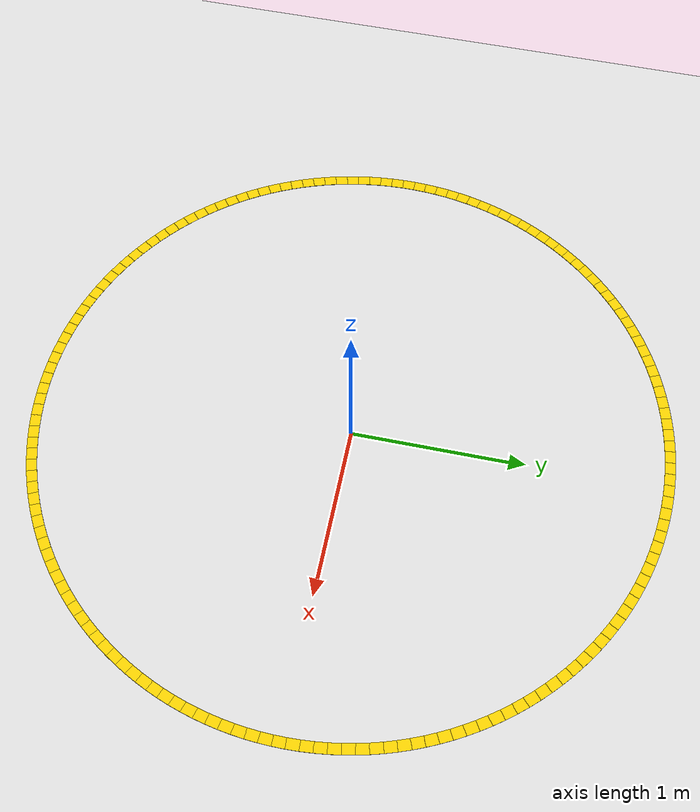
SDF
<?xml version='1.0' encoding='utf-8'?>
<sdf version="1.6">
  <world name="lab4_prep_ring">
    <gravity>0 0 -9.81</gravity>
    <physics name="default_physics" type="ode">
      <real_time_update_rate>1000</real_time_update_rate>
      <max_step_size>0.001</max_step_size>
    </physics>
    <scene>
      <ambient>0.65 0.65 0.65 1</ambient>
      <background>0.8 0.85 0.9 1</background>
    </scene>
    <light name="prep_sun" type="directional">
      <pose>0 0 10 0 0 0</pose>
      <diffuse>0.8 0.8 0.8 1</diffuse>
      <specular>0.1 0.1 0.1 1</specular>
      <direction>-0.5 -0.2 -1</direction>
    </light>
    <model name="prep_floor">
      <static>true</static>
      <link name="floor">
        <collision name="collision">
          <geometry>
            <plane>
              <normal>0 0 1</normal>
              <size>10 10</size>
            </plane>
          </geometry>
        </collision>
        <visual name="visual">
          <geometry>
            <plane>
              <normal>0 0 1</normal>
              <size>10 10</size>
            </plane>
          </geometry>
          <material>
            <ambient>0.9 0.9 0.9 1</ambient>
            <diffuse>0.9 0.9 0.9 1</diffuse>
          </material>
        </visual>
      </link>
    </model>
    <model name="prep_yellow_ring">
      <static>true</static>
      <link name="line">
        <visual name="yellow_0">
          <pose>1.80000000 0.00000000 0.002 0 0 1.57079633</pose>
          <geometry>
            <box>
              <size>0.072 0.06 0.002</size>
            </box>
          </geometry>
          <material>
            <ambient>1 0.85 0 1</ambient>
            <diffuse>1 0.85 0 1</diffuse>
          </material>
        </visual>
        <visual name="yellow_1">
          <pose>1.79861227 0.07066767 0.002 0 0 1.61006623</pose>
          <geometry>
            <box>
              <size>0.072 0.06 0.002</size>
            </box>
          </geometry>
          <material>
            <ambient>1 0.85 0 1</ambient>
            <diffuse>1 0.85 0 1</diffuse>
          </material>
        </visual>
        <visual name="yellow_2">
          <pose>1.79445120 0.14122637 0.002 0 0 1.64933614</pose>
          <geometry>
            <box>
              <size>0.072 0.06 0.002</size>
            </box>
          </geometry>
          <material>
            <ambient>1 0.85 0 1</ambient>
            <diffuse>1 0.85 0 1</diffuse>
          </material>
        </visual>
        <visual name="yellow_3">
          <pose>1.78752322 0.21156732 0.002 0 0 1.68860605</pose>
          <geometry>
            <box>
              <size>0.072 0.06 0.002</size>
            </box>
          </geometry>
          <material>
            <ambient>1 0.85 0 1</ambient>
            <diffuse>1 0.85 0 1</diffuse>
          </material>
        </visual>
        <visual name="yellow_4">
          <pose>1.77783901 0.28158204 0.002 0 0 1.72787596</pose>
          <geometry>
            <box>
              <size>0.072 0.06 0.002</size>
            </box>
          </geometry>
          <material>
            <ambient>1 0.85 0 1</ambient>
            <diffuse>1 0.85 0 1</diffuse>
          </material>
        </visual>
        <visual name="yellow_5">
          <pose>1.76541350 0.35116258 0.002 0 0 1.76714587</pose>
          <geometry>
            <box>
              <size>0.072 0.06 0.002</size>
            </box>
          </geometry>
          <material>
            <ambient>1 0.85 0 1</ambient>
            <diffuse>1 0.85 0 1</diffuse>
          </material>
        </visual>
        <visual name="yellow_6">
          <pose>1.75026586 0.42020165 0.002 0 0 1.80641578</pose>
          <geometry>
            <box>
              <size>0.072 0.06 0.002</size>
            </box>
          </geometry>
          <material>
            <ambient>1 0.85 0 1</ambient>
            <diffuse>1 0.85 0 1</diffuse>
          </material>
        </visual>
        <visual name="yellow_7">
          <pose>1.73241943 0.48859281 0.002 0 0 1.84568568</pose>
          <geometry>
            <box>
              <size>0.072 0.06 0.002</size>
            </box>
          </geometry>
          <material>
            <ambient>1 0.85 0 1</ambient>
            <diffuse>1 0.85 0 1</diffuse>
          </material>
        </visual>
        <visual name="yellow_8">
          <pose>1.71190173 0.55623059 0.002 0 0 1.88495559</pose>
          <geometry>
            <box>
              <size>0.072 0.06 0.002</size>
            </box>
          </geometry>
          <material>
            <ambient>1 0.85 0 1</ambient>
            <diffuse>1 0.85 0 1</diffuse>
          </material>
        </visual>
        <visual name="yellow_9">
          <pose>1.68874440 0.62301070 0.002 0 0 1.92422550</pose>
          <geometry>
            <box>
              <size>0.072 0.06 0.002</size>
            </box>
          </geometry>
          <material>
            <ambient>1 0.85 0 1</ambient>
            <diffuse>1 0.85 0 1</diffuse>
          </material>
        </visual>
        <visual name="yellow_10">
          <pose>1.66298316 0.68883018 0.002 0 0 1.96349541</pose>
          <geometry>
            <box>
              <size>0.072 0.06 0.002</size>
            </box>
          </geometry>
          <material>
            <ambient>1 0.85 0 1</ambient>
            <diffuse>1 0.85 0 1</diffuse>
          </material>
        </visual>
        <visual name="yellow_11">
          <pose>1.63465771 0.75358753 0.002 0 0 2.00276532</pose>
          <geometry>
            <box>
              <size>0.072 0.06 0.002</size>
            </box>
          </geometry>
          <material>
            <ambient>1 0.85 0 1</ambient>
            <diffuse>1 0.85 0 1</diffuse>
          </material>
        </visual>
        <visual name="yellow_12">
          <pose>1.60381174 0.81718290 0.002 0 0 2.04203522</pose>
          <geometry>
            <box>
              <size>0.072 0.06 0.002</size>
            </box>
          </geometry>
          <material>
            <ambient>1 0.85 0 1</ambient>
            <diffuse>1 0.85 0 1</diffuse>
          </material>
        </visual>
        <visual name="yellow_13">
          <pose>1.57049281 0.87951823 0.002 0 0 2.08130513</pose>
          <geometry>
            <box>
              <size>0.072 0.06 0.002</size>
            </box>
          </geometry>
          <material>
            <ambient>1 0.85 0 1</ambient>
            <diffuse>1 0.85 0 1</diffuse>
          </material>
        </visual>
        <visual name="yellow_14">
          <pose>1.53475230 0.94049742 0.002 0 0 2.12057504</pose>
          <geometry>
            <box>
              <size>0.072 0.06 0.002</size>
            </box>
          </geometry>
          <material>
            <ambient>1 0.85 0 1</ambient>
            <diffuse>1 0.85 0 1</diffuse>
          </material>
        </visual>
        <visual name="yellow_15">
          <pose>1.49664530 1.00002642 0.002 0 0 2.15984495</pose>
          <geometry>
            <box>
              <size>0.072 0.06 0.002</size>
            </box>
          </geometry>
          <material>
            <ambient>1 0.85 0 1</ambient>
            <diffuse>1 0.85 0 1</diffuse>
          </material>
        </visual>
        <visual name="yellow_16">
          <pose>1.45623059 1.05801345 0.002 0 0 2.19911486</pose>
          <geometry>
            <box>
              <size>0.072 0.06 0.002</size>
            </box>
          </geometry>
          <material>
            <ambient>1 0.85 0 1</ambient>
            <diffuse>1 0.85 0 1</diffuse>
          </material>
        </visual>
        <visual name="yellow_17">
          <pose>1.41357048 1.11436911 0.002 0 0 2.23838477</pose>
          <geometry>
            <box>
              <size>0.072 0.06 0.002</size>
            </box>
          </geometry>
          <material>
            <ambient>1 0.85 0 1</ambient>
            <diffuse>1 0.85 0 1</diffuse>
          </material>
        </visual>
        <visual name="yellow_18">
          <pose>1.36873074 1.16900649 0.002 0 0 2.27765467</pose>
          <geometry>
            <box>
              <size>0.072 0.06 0.002</size>
            </box>
          </geometry>
          <material>
            <ambient>1 0.85 0 1</ambient>
            <diffuse>1 0.85 0 1</diffuse>
          </material>
        </visual>
        <visual name="yellow_19">
          <pose>1.32178052 1.22184134 0.002 0 0 2.31692458</pose>
          <geometry>
            <box>
              <size>0.072 0.06 0.002</size>
            </box>
          </geometry>
          <material>
            <ambient>1 0.85 0 1</ambient>
            <diffuse>1 0.85 0 1</diffuse>
          </material>
        </visual>
        <visual name="yellow_20">
          <pose>1.27279221 1.27279221 0.002 0 0 2.35619449</pose>
          <geometry>
            <box>
              <size>0.072 0.06 0.002</size>
            </box>
          </geometry>
          <material>
            <ambient>1 0.85 0 1</ambient>
            <diffuse>1 0.85 0 1</diffuse>
          </material>
        </visual>
        <visual name="yellow_21">
          <pose>1.22184134 1.32178052 0.002 0 0 2.39546440</pose>
          <geometry>
            <box>
              <size>0.072 0.06 0.002</size>
            </box>
          </geometry>
          <material>
            <ambient>1 0.85 0 1</ambient>
            <diffuse>1 0.85 0 1</diffuse>
          </material>
        </visual>
        <visual name="yellow_22">
          <pose>1.16900649 1.36873074 0.002 0 0 2.43473431</pose>
          <geometry>
            <box>
              <size>0.072 0.06 0.002</size>
            </box>
          </geometry>
          <material>
            <ambient>1 0.85 0 1</ambient>
            <diffuse>1 0.85 0 1</diffuse>
          </material>
        </visual>
        <visual name="yellow_23">
          <pose>1.11436911 1.41357048 0.002 0 0 2.47400421</pose>
          <geometry>
            <box>
              <size>0.072 0.06 0.002</size>
            </box>
          </geometry>
          <material>
            <ambient>1 0.85 0 1</ambient>
            <diffuse>1 0.85 0 1</diffuse>
          </material>
        </visual>
        <visual name="yellow_24">
          <pose>1.05801345 1.45623059 0.002 0 0 2.51327412</pose>
          <geometry>
            <box>
              <size>0.072 0.06 0.002</size>
            </box>
          </geometry>
          <material>
            <ambient>1 0.85 0 1</ambient>
            <diffuse>1 0.85 0 1</diffuse>
          </material>
        </visual>
        <visual name="yellow_25">
          <pose>1.00002642 1.49664530 0.002 0 0 2.55254403</pose>
          <geometry>
            <box>
              <size>0.072 0.06 0.002</size>
            </box>
          </geometry>
          <material>
            <ambient>1 0.85 0 1</ambient>
            <diffuse>1 0.85 0 1</diffuse>
          </material>
        </visual>
        <visual name="yellow_26">
          <pose>0.94049742 1.53475230 0.002 0 0 2.59181394</pose>
          <geometry>
            <box>
              <size>0.072 0.06 0.002</size>
            </box>
          </geometry>
          <material>
            <ambient>1 0.85 0 1</ambient>
            <diffuse>1 0.85 0 1</diffuse>
          </material>
        </visual>
        <visual name="yellow_27">
          <pose>0.87951823 1.57049281 0.002 0 0 2.63108385</pose>
          <geometry>
            <box>
              <size>0.072 0.06 0.002</size>
            </box>
          </geometry>
          <material>
            <ambient>1 0.85 0 1</ambient>
            <diffuse>1 0.85 0 1</diffuse>
          </material>
        </visual>
        <visual name="yellow_28">
          <pose>0.81718290 1.60381174 0.002 0 0 2.67035376</pose>
          <geometry>
            <box>
              <size>0.072 0.06 0.002</size>
            </box>
          </geometry>
          <material>
            <ambient>1 0.85 0 1</ambient>
            <diffuse>1 0.85 0 1</diffuse>
          </material>
        </visual>
        <visual name="yellow_29">
          <pose>0.75358753 1.63465771 0.002 0 0 2.70962366</pose>
          <geometry>
            <box>
              <size>0.072 0.06 0.002</size>
            </box>
          </geometry>
          <material>
            <ambient>1 0.85 0 1</ambient>
            <diffuse>1 0.85 0 1</diffuse>
          </material>
        </visual>
        <visual name="yellow_30">
          <pose>0.68883018 1.66298316 0.002 0 0 2.74889357</pose>
          <geometry>
            <box>
              <size>0.072 0.06 0.002</size>
            </box>
          </geometry>
          <material>
            <ambient>1 0.85 0 1</ambient>
            <diffuse>1 0.85 0 1</diffuse>
          </material>
        </visual>
        <visual name="yellow_31">
          <pose>0.62301070 1.68874440 0.002 0 0 2.78816348</pose>
          <geometry>
            <box>
              <size>0.072 0.06 0.002</size>
            </box>
          </geometry>
          <material>
            <ambient>1 0.85 0 1</ambient>
            <diffuse>1 0.85 0 1</diffuse>
          </material>
        </visual>
        <visual name="yellow_32">
          <pose>0.55623059 1.71190173 0.002 0 0 2.82743339</pose>
          <geometry>
            <box>
              <size>0.072 0.06 0.002</size>
            </box>
          </geometry>
          <material>
            <ambient>1 0.85 0 1</ambient>
            <diffuse>1 0.85 0 1</diffuse>
          </material>
        </visual>
        <visual name="yellow_33">
          <pose>0.48859281 1.73241943 0.002 0 0 2.86670330</pose>
          <geometry>
            <box>
              <size>0.072 0.06 0.002</size>
            </box>
          </geometry>
          <material>
            <ambient>1 0.85 0 1</ambient>
            <diffuse>1 0.85 0 1</diffuse>
          </material>
        </visual>
        <visual name="yellow_34">
          <pose>0.42020165 1.75026586 0.002 0 0 2.90597320</pose>
          <geometry>
            <box>
              <size>0.072 0.06 0.002</size>
            </box>
          </geometry>
          <material>
            <ambient>1 0.85 0 1</ambient>
            <diffuse>1 0.85 0 1</diffuse>
          </material>
        </visual>
        <visual name="yellow_35">
          <pose>0.35116258 1.76541350 0.002 0 0 2.94524311</pose>
          <geometry>
            <box>
              <size>0.072 0.06 0.002</size>
            </box>
          </geometry>
          <material>
            <ambient>1 0.85 0 1</ambient>
            <diffuse>1 0.85 0 1</diffuse>
          </material>
        </visual>
        <visual name="yellow_36">
          <pose>0.28158204 1.77783901 0.002 0 0 2.98451302</pose>
          <geometry>
            <box>
              <size>0.072 0.06 0.002</size>
            </box>
          </geometry>
          <material>
            <ambient>1 0.85 0 1</ambient>
            <diffuse>1 0.85 0 1</diffuse>
          </material>
        </visual>
        <visual name="yellow_37">
          <pose>0.21156732 1.78752322 0.002 0 0 3.02378293</pose>
          <geometry>
            <box>
              <size>0.072 0.06 0.002</size>
            </box>
          </geometry>
          <material>
            <ambient>1 0.85 0 1</ambient>
            <diffuse>1 0.85 0 1</diffuse>
          </material>
        </visual>
        <visual name="yellow_38">
          <pose>0.14122637 1.79445120 0.002 0 0 3.06305284</pose>
          <geometry>
            <box>
              <size>0.072 0.06 0.002</size>
            </box>
          </geometry>
          <material>
            <ambient>1 0.85 0 1</ambient>
            <diffuse>1 0.85 0 1</diffuse>
          </material>
        </visual>
        <visual name="yellow_39">
          <pose>0.07066767 1.79861227 0.002 0 0 3.10232275</pose>
          <geometry>
            <box>
              <size>0.072 0.06 0.002</size>
            </box>
          </geometry>
          <material>
            <ambient>1 0.85 0 1</ambient>
            <diffuse>1 0.85 0 1</diffuse>
          </material>
        </visual>
        <visual name="yellow_40">
          <pose>0.00000000 1.80000000 0.002 0 0 3.14159265</pose>
          <geometry>
            <box>
              <size>0.072 0.06 0.002</size>
            </box>
          </geometry>
          <material>
            <ambient>1 0.85 0 1</ambient>
            <diffuse>1 0.85 0 1</diffuse>
          </material>
        </visual>
        <visual name="yellow_41">
          <pose>-0.07066767 1.79861227 0.002 0 0 3.18086256</pose>
          <geometry>
            <box>
              <size>0.072 0.06 0.002</size>
            </box>
          </geometry>
          <material>
            <ambient>1 0.85 0 1</ambient>
            <diffuse>1 0.85 0 1</diffuse>
          </material>
        </visual>
        <visual name="yellow_42">
          <pose>-0.14122637 1.79445120 0.002 0 0 3.22013247</pose>
          <geometry>
            <box>
              <size>0.072 0.06 0.002</size>
            </box>
          </geometry>
          <material>
            <ambient>1 0.85 0 1</ambient>
            <diffuse>1 0.85 0 1</diffuse>
          </material>
        </visual>
        <visual name="yellow_43">
          <pose>-0.21156732 1.78752322 0.002 0 0 3.25940238</pose>
          <geometry>
            <box>
              <size>0.072 0.06 0.002</size>
            </box>
          </geometry>
          <material>
            <ambient>1 0.85 0 1</ambient>
            <diffuse>1 0.85 0 1</diffuse>
          </material>
        </visual>
        <visual name="yellow_44">
          <pose>-0.28158204 1.77783901 0.002 0 0 3.29867229</pose>
          <geometry>
            <box>
              <size>0.072 0.06 0.002</size>
            </box>
          </geometry>
          <material>
            <ambient>1 0.85 0 1</ambient>
            <diffuse>1 0.85 0 1</diffuse>
          </material>
        </visual>
        <visual name="yellow_45">
          <pose>-0.35116258 1.76541350 0.002 0 0 3.33794219</pose>
          <geometry>
            <box>
              <size>0.072 0.06 0.002</size>
            </box>
          </geometry>
          <material>
            <ambient>1 0.85 0 1</ambient>
            <diffuse>1 0.85 0 1</diffuse>
          </material>
        </visual>
        <visual name="yellow_46">
          <pose>-0.42020165 1.75026586 0.002 0 0 3.37721210</pose>
          <geometry>
            <box>
              <size>0.072 0.06 0.002</size>
            </box>
          </geometry>
          <material>
            <ambient>1 0.85 0 1</ambient>
            <diffuse>1 0.85 0 1</diffuse>
          </material>
        </visual>
        <visual name="yellow_47">
          <pose>-0.48859281 1.73241943 0.002 0 0 3.41648201</pose>
          <geometry>
            <box>
              <size>0.072 0.06 0.002</size>
            </box>
          </geometry>
          <material>
            <ambient>1 0.85 0 1</ambient>
            <diffuse>1 0.85 0 1</diffuse>
          </material>
        </visual>
        <visual name="yellow_48">
          <pose>-0.55623059 1.71190173 0.002 0 0 3.45575192</pose>
          <geometry>
            <box>
              <size>0.072 0.06 0.002</size>
            </box>
          </geometry>
          <material>
            <ambient>1 0.85 0 1</ambient>
            <diffuse>1 0.85 0 1</diffuse>
          </material>
        </visual>
        <visual name="yellow_49">
          <pose>-0.62301070 1.68874440 0.002 0 0 3.49502183</pose>
          <geometry>
            <box>
              <size>0.072 0.06 0.002</size>
            </box>
          </geometry>
          <material>
            <ambient>1 0.85 0 1</ambient>
            <diffuse>1 0.85 0 1</diffuse>
          </material>
        </visual>
        <visual name="yellow_50">
          <pose>-0.68883018 1.66298316 0.002 0 0 3.53429174</pose>
          <geometry>
            <box>
              <size>0.072 0.06 0.002</size>
            </box>
          </geometry>
          <material>
            <ambient>1 0.85 0 1</ambient>
            <diffuse>1 0.85 0 1</diffuse>
          </material>
        </visual>
        <visual name="yellow_51">
          <pose>-0.75358753 1.63465771 0.002 0 0 3.57356164</pose>
          <geometry>
            <box>
              <size>0.072 0.06 0.002</size>
            </box>
          </geometry>
          <material>
            <ambient>1 0.85 0 1</ambient>
            <diffuse>1 0.85 0 1</diffuse>
          </material>
        </visual>
        <visual name="yellow_52">
          <pose>-0.81718290 1.60381174 0.002 0 0 3.61283155</pose>
          <geometry>
            <box>
              <size>0.072 0.06 0.002</size>
            </box>
          </geometry>
          <material>
            <ambient>1 0.85 0 1</ambient>
            <diffuse>1 0.85 0 1</diffuse>
          </material>
        </visual>
        <visual name="yellow_53">
          <pose>-0.87951823 1.57049281 0.002 0 0 3.65210146</pose>
          <geometry>
            <box>
              <size>0.072 0.06 0.002</size>
            </box>
          </geometry>
          <material>
            <ambient>1 0.85 0 1</ambient>
            <diffuse>1 0.85 0 1</diffuse>
          </material>
        </visual>
        <visual name="yellow_54">
          <pose>-0.94049742 1.53475230 0.002 0 0 3.69137137</pose>
          <geometry>
            <box>
              <size>0.072 0.06 0.002</size>
            </box>
          </geometry>
          <material>
            <ambient>1 0.85 0 1</ambient>
            <diffuse>1 0.85 0 1</diffuse>
          </material>
        </visual>
        <visual name="yellow_55">
          <pose>-1.00002642 1.49664530 0.002 0 0 3.73064128</pose>
          <geometry>
            <box>
              <size>0.072 0.06 0.002</size>
            </box>
          </geometry>
          <material>
            <ambient>1 0.85 0 1</ambient>
            <diffuse>1 0.85 0 1</diffuse>
          </material>
        </visual>
        <visual name="yellow_56">
          <pose>-1.05801345 1.45623059 0.002 0 0 3.76991118</pose>
          <geometry>
            <box>
              <size>0.072 0.06 0.002</size>
            </box>
          </geometry>
          <material>
            <ambient>1 0.85 0 1</ambient>
            <diffuse>1 0.85 0 1</diffuse>
          </material>
        </visual>
        <visual name="yellow_57">
          <pose>-1.11436911 1.41357048 0.002 0 0 3.80918109</pose>
          <geometry>
            <box>
              <size>0.072 0.06 0.002</size>
            </box>
          </geometry>
          <material>
            <ambient>1 0.85 0 1</ambient>
            <diffuse>1 0.85 0 1</diffuse>
          </material>
        </visual>
        <visual name="yellow_58">
          <pose>-1.16900649 1.36873074 0.002 0 0 3.84845100</pose>
          <geometry>
            <box>
              <size>0.072 0.06 0.002</size>
            </box>
          </geometry>
          <material>
            <ambient>1 0.85 0 1</ambient>
            <diffuse>1 0.85 0 1</diffuse>
          </material>
        </visual>
        <visual name="yellow_59">
          <pose>-1.22184134 1.32178052 0.002 0 0 3.88772091</pose>
          <geometry>
            <box>
              <size>0.072 0.06 0.002</size>
            </box>
          </geometry>
          <material>
            <ambient>1 0.85 0 1</ambient>
            <diffuse>1 0.85 0 1</diffuse>
          </material>
        </visual>
        <visual name="yellow_60">
          <pose>-1.27279221 1.27279221 0.002 0 0 3.92699082</pose>
          <geometry>
            <box>
              <size>0.072 0.06 0.002</size>
            </box>
          </geometry>
          <material>
            <ambient>1 0.85 0 1</ambient>
            <diffuse>1 0.85 0 1</diffuse>
          </material>
        </visual>
        <visual name="yellow_61">
          <pose>-1.32178052 1.22184134 0.002 0 0 3.96626073</pose>
          <geometry>
            <box>
              <size>0.072 0.06 0.002</size>
            </box>
          </geometry>
          <material>
            <ambient>1 0.85 0 1</ambient>
            <diffuse>1 0.85 0 1</diffuse>
          </material>
        </visual>
        <visual name="yellow_62">
          <pose>-1.36873074 1.16900649 0.002 0 0 4.00553063</pose>
          <geometry>
            <box>
              <size>0.072 0.06 0.002</size>
            </box>
          </geometry>
          <material>
            <ambient>1 0.85 0 1</ambient>
            <diffuse>1 0.85 0 1</diffuse>
          </material>
        </visual>
        <visual name="yellow_63">
          <pose>-1.41357048 1.11436911 0.002 0 0 4.04480054</pose>
          <geometry>
            <box>
              <size>0.072 0.06 0.002</size>
            </box>
          </geometry>
          <material>
            <ambient>1 0.85 0 1</ambient>
            <diffuse>1 0.85 0 1</diffuse>
          </material>
        </visual>
        <visual name="yellow_64">
          <pose>-1.45623059 1.05801345 0.002 0 0 4.08407045</pose>
          <geometry>
            <box>
              <size>0.072 0.06 0.002</size>
            </box>
          </geometry>
          <material>
            <ambient>1 0.85 0 1</ambient>
            <diffuse>1 0.85 0 1</diffuse>
          </material>
        </visual>
        <visual name="yellow_65">
          <pose>-1.49664530 1.00002642 0.002 0 0 4.12334036</pose>
          <geometry>
            <box>
              <size>0.072 0.06 0.002</size>
            </box>
          </geometry>
          <material>
            <ambient>1 0.85 0 1</ambient>
            <diffuse>1 0.85 0 1</diffuse>
          </material>
        </visual>
        <visual name="yellow_66">
          <pose>-1.53475230 0.94049742 0.002 0 0 4.16261027</pose>
          <geometry>
            <box>
              <size>0.072 0.06 0.002</size>
            </box>
          </geometry>
          <material>
            <ambient>1 0.85 0 1</ambient>
            <diffuse>1 0.85 0 1</diffuse>
          </material>
        </visual>
        <visual name="yellow_67">
          <pose>-1.57049281 0.87951823 0.002 0 0 4.20188017</pose>
          <geometry>
            <box>
              <size>0.072 0.06 0.002</size>
            </box>
          </geometry>
          <material>
            <ambient>1 0.85 0 1</ambient>
            <diffuse>1 0.85 0 1</diffuse>
          </material>
        </visual>
        <visual name="yellow_68">
          <pose>-1.60381174 0.81718290 0.002 0 0 4.24115008</pose>
          <geometry>
            <box>
              <size>0.072 0.06 0.002</size>
            </box>
          </geometry>
          <material>
            <ambient>1 0.85 0 1</ambient>
            <diffuse>1 0.85 0 1</diffuse>
          </material>
        </visual>
        <visual name="yellow_69">
          <pose>-1.63465771 0.75358753 0.002 0 0 4.28041999</pose>
          <geometry>
            <box>
              <size>0.072 0.06 0.002</size>
            </box>
          </geometry>
          <material>
            <ambient>1 0.85 0 1</ambient>
            <diffuse>1 0.85 0 1</diffuse>
          </material>
        </visual>
        <visual name="yellow_70">
          <pose>-1.66298316 0.68883018 0.002 0 0 4.31968990</pose>
          <geometry>
            <box>
              <size>0.072 0.06 0.002</size>
            </box>
          </geometry>
          <material>
            <ambient>1 0.85 0 1</ambient>
            <diffuse>1 0.85 0 1</diffuse>
          </material>
        </visual>
        <visual name="yellow_71">
          <pose>-1.68874440 0.62301070 0.002 0 0 4.35895981</pose>
          <geometry>
            <box>
              <size>0.072 0.06 0.002</size>
            </box>
          </geometry>
          <material>
            <ambient>1 0.85 0 1</ambient>
            <diffuse>1 0.85 0 1</diffuse>
          </material>
        </visual>
        <visual name="yellow_72">
          <pose>-1.71190173 0.55623059 0.002 0 0 4.39822972</pose>
          <geometry>
            <box>
              <size>0.072 0.06 0.002</size>
            </box>
          </geometry>
          <material>
            <ambient>1 0.85 0 1</ambient>
            <diffuse>1 0.85 0 1</diffuse>
          </material>
        </visual>
        <visual name="yellow_73">
          <pose>-1.73241943 0.48859281 0.002 0 0 4.43749962</pose>
          <geometry>
            <box>
              <size>0.072 0.06 0.002</size>
            </box>
          </geometry>
          <material>
            <ambient>1 0.85 0 1</ambient>
            <diffuse>1 0.85 0 1</diffuse>
          </material>
        </visual>
        <visual name="yellow_74">
          <pose>-1.75026586 0.42020165 0.002 0 0 4.47676953</pose>
          <geometry>
            <box>
              <size>0.072 0.06 0.002</size>
            </box>
          </geometry>
          <material>
            <ambient>1 0.85 0 1</ambient>
            <diffuse>1 0.85 0 1</diffuse>
          </material>
        </visual>
        <visual name="yellow_75">
          <pose>-1.76541350 0.35116258 0.002 0 0 4.51603944</pose>
          <geometry>
            <box>
              <size>0.072 0.06 0.002</size>
            </box>
          </geometry>
          <material>
            <ambient>1 0.85 0 1</ambient>
            <diffuse>1 0.85 0 1</diffuse>
          </material>
        </visual>
        <visual name="yellow_76">
          <pose>-1.77783901 0.28158204 0.002 0 0 4.55530935</pose>
          <geometry>
            <box>
              <size>0.072 0.06 0.002</size>
            </box>
          </geometry>
          <material>
            <ambient>1 0.85 0 1</ambient>
            <diffuse>1 0.85 0 1</diffuse>
          </material>
        </visual>
        <visual name="yellow_77">
          <pose>-1.78752322 0.21156732 0.002 0 0 4.59457926</pose>
          <geometry>
            <box>
              <size>0.072 0.06 0.002</size>
            </box>
          </geometry>
          <material>
            <ambient>1 0.85 0 1</ambient>
            <diffuse>1 0.85 0 1</diffuse>
          </material>
        </visual>
        <visual name="yellow_78">
          <pose>-1.79445120 0.14122637 0.002 0 0 4.63384916</pose>
          <geometry>
            <box>
              <size>0.072 0.06 0.002</size>
            </box>
          </geometry>
          <material>
            <ambient>1 0.85 0 1</ambient>
            <diffuse>1 0.85 0 1</diffuse>
          </material>
        </visual>
        <visual name="yellow_79">
          <pose>-1.79861227 0.07066767 0.002 0 0 4.67311907</pose>
          <geometry>
            <box>
              <size>0.072 0.06 0.002</size>
            </box>
          </geometry>
          <material>
            <ambient>1 0.85 0 1</ambient>
            <diffuse>1 0.85 0 1</diffuse>
          </material>
        </visual>
        <visual name="yellow_80">
          <pose>-1.80000000 0.00000000 0.002 0 0 4.71238898</pose>
          <geometry>
            <box>
              <size>0.072 0.06 0.002</size>
            </box>
          </geometry>
          <material>
            <ambient>1 0.85 0 1</ambient>
            <diffuse>1 0.85 0 1</diffuse>
          </material>
        </visual>
        <visual name="yellow_81">
          <pose>-1.79861227 -0.07066767 0.002 0 0 4.75165889</pose>
          <geometry>
            <box>
              <size>0.072 0.06 0.002</size>
            </box>
          </geometry>
          <material>
            <ambient>1 0.85 0 1</ambient>
            <diffuse>1 0.85 0 1</diffuse>
          </material>
        </visual>
        <visual name="yellow_82">
          <pose>-1.79445120 -0.14122637 0.002 0 0 4.79092880</pose>
          <geometry>
            <box>
              <size>0.072 0.06 0.002</size>
            </box>
          </geometry>
          <material>
            <ambient>1 0.85 0 1</ambient>
            <diffuse>1 0.85 0 1</diffuse>
          </material>
        </visual>
        <visual name="yellow_83">
          <pose>-1.78752322 -0.21156732 0.002 0 0 4.83019870</pose>
          <geometry>
            <box>
              <size>0.072 0.06 0.002</size>
            </box>
          </geometry>
          <material>
            <ambient>1 0.85 0 1</ambient>
            <diffuse>1 0.85 0 1</diffuse>
          </material>
        </visual>
        <visual name="yellow_84">
          <pose>-1.77783901 -0.28158204 0.002 0 0 4.86946861</pose>
          <geometry>
            <box>
              <size>0.072 0.06 0.002</size>
            </box>
          </geometry>
          <material>
            <ambient>1 0.85 0 1</ambient>
            <diffuse>1 0.85 0 1</diffuse>
          </material>
        </visual>
        <visual name="yellow_85">
          <pose>-1.76541350 -0.35116258 0.002 0 0 4.90873852</pose>
          <geometry>
            <box>
              <size>0.072 0.06 0.002</size>
            </box>
          </geometry>
          <material>
            <ambient>1 0.85 0 1</ambient>
            <diffuse>1 0.85 0 1</diffuse>
          </material>
        </visual>
        <visual name="yellow_86">
          <pose>-1.75026586 -0.42020165 0.002 0 0 4.94800843</pose>
          <geometry>
            <box>
              <size>0.072 0.06 0.002</size>
            </box>
          </geometry>
          <material>
            <ambient>1 0.85 0 1</ambient>
            <diffuse>1 0.85 0 1</diffuse>
          </material>
        </visual>
        <visual name="yellow_87">
          <pose>-1.73241943 -0.48859281 0.002 0 0 4.98727834</pose>
          <geometry>
            <box>
              <size>0.072 0.06 0.002</size>
            </box>
          </geometry>
          <material>
            <ambient>1 0.85 0 1</ambient>
            <diffuse>1 0.85 0 1</diffuse>
          </material>
        </visual>
        <visual name="yellow_88">
          <pose>-1.71190173 -0.55623059 0.002 0 0 5.02654825</pose>
          <geometry>
            <box>
              <size>0.072 0.06 0.002</size>
            </box>
          </geometry>
          <material>
            <ambient>1 0.85 0 1</ambient>
            <diffuse>1 0.85 0 1</diffuse>
          </material>
        </visual>
        <visual name="yellow_89">
          <pose>-1.68874440 -0.62301070 0.002 0 0 5.06581815</pose>
          <geometry>
            <box>
              <size>0.072 0.06 0.002</size>
            </box>
          </geometry>
          <material>
            <ambient>1 0.85 0 1</ambient>
            <diffuse>1 0.85 0 1</diffuse>
          </material>
        </visual>
        <visual name="yellow_90">
          <pose>-1.66298316 -0.68883018 0.002 0 0 5.10508806</pose>
          <geometry>
            <box>
              <size>0.072 0.06 0.002</size>
            </box>
          </geometry>
          <material>
            <ambient>1 0.85 0 1</ambient>
            <diffuse>1 0.85 0 1</diffuse>
          </material>
        </visual>
        <visual name="yellow_91">
          <pose>-1.63465771 -0.75358753 0.002 0 0 5.14435797</pose>
          <geometry>
            <box>
              <size>0.072 0.06 0.002</size>
            </box>
          </geometry>
          <material>
            <ambient>1 0.85 0 1</ambient>
            <diffuse>1 0.85 0 1</diffuse>
          </material>
        </visual>
        <visual name="yellow_92">
          <pose>-1.60381174 -0.81718290 0.002 0 0 5.18362788</pose>
          <geometry>
            <box>
              <size>0.072 0.06 0.002</size>
            </box>
          </geometry>
          <material>
            <ambient>1 0.85 0 1</ambient>
            <diffuse>1 0.85 0 1</diffuse>
          </material>
        </visual>
        <visual name="yellow_93">
          <pose>-1.57049281 -0.87951823 0.002 0 0 5.22289779</pose>
          <geometry>
            <box>
              <size>0.072 0.06 0.002</size>
            </box>
          </geometry>
          <material>
            <ambient>1 0.85 0 1</ambient>
            <diffuse>1 0.85 0 1</diffuse>
          </material>
        </visual>
        <visual name="yellow_94">
          <pose>-1.53475230 -0.94049742 0.002 0 0 5.26216769</pose>
          <geometry>
            <box>
              <size>0.072 0.06 0.002</size>
            </box>
          </geometry>
          <material>
            <ambient>1 0.85 0 1</ambient>
            <diffuse>1 0.85 0 1</diffuse>
          </material>
        </visual>
        <visual name="yellow_95">
          <pose>-1.49664530 -1.00002642 0.002 0 0 5.30143760</pose>
          <geometry>
            <box>
              <size>0.072 0.06 0.002</size>
            </box>
          </geometry>
          <material>
            <ambient>1 0.85 0 1</ambient>
            <diffuse>1 0.85 0 1</diffuse>
          </material>
        </visual>
        <visual name="yellow_96">
          <pose>-1.45623059 -1.05801345 0.002 0 0 5.34070751</pose>
          <geometry>
            <box>
              <size>0.072 0.06 0.002</size>
            </box>
          </geometry>
          <material>
            <ambient>1 0.85 0 1</ambient>
            <diffuse>1 0.85 0 1</diffuse>
          </material>
        </visual>
        <visual name="yellow_97">
          <pose>-1.41357048 -1.11436911 0.002 0 0 5.37997742</pose>
          <geometry>
            <box>
              <size>0.072 0.06 0.002</size>
            </box>
          </geometry>
          <material>
            <ambient>1 0.85 0 1</ambient>
            <diffuse>1 0.85 0 1</diffuse>
          </material>
        </visual>
        <visual name="yellow_98">
          <pose>-1.36873074 -1.16900649 0.002 0 0 5.41924733</pose>
          <geometry>
            <box>
              <size>0.072 0.06 0.002</size>
            </box>
          </geometry>
          <material>
            <ambient>1 0.85 0 1</ambient>
            <diffuse>1 0.85 0 1</diffuse>
          </material>
        </visual>
        <visual name="yellow_99">
          <pose>-1.32178052 -1.22184134 0.002 0 0 5.45851724</pose>
          <geometry>
            <box>
              <size>0.072 0.06 0.002</size>
            </box>
          </geometry>
          <material>
            <ambient>1 0.85 0 1</ambient>
            <diffuse>1 0.85 0 1</diffuse>
          </material>
        </visual>
        <visual name="yellow_100">
          <pose>-1.27279221 -1.27279221 0.002 0 0 5.49778714</pose>
          <geometry>
            <box>
              <size>0.072 0.06 0.002</size>
            </box>
          </geometry>
          <material>
            <ambient>1 0.85 0 1</ambient>
            <diffuse>1 0.85 0 1</diffuse>
          </material>
        </visual>
        <visual name="yellow_101">
          <pose>-1.22184134 -1.32178052 0.002 0 0 5.53705705</pose>
          <geometry>
            <box>
              <size>0.072 0.06 0.002</size>
            </box>
          </geometry>
          <material>
            <ambient>1 0.85 0 1</ambient>
            <diffuse>1 0.85 0 1</diffuse>
          </material>
        </visual>
        <visual name="yellow_102">
          <pose>-1.16900649 -1.36873074 0.002 0 0 5.57632696</pose>
          <geometry>
            <box>
              <size>0.072 0.06 0.002</size>
            </box>
          </geometry>
          <material>
            <ambient>1 0.85 0 1</ambient>
            <diffuse>1 0.85 0 1</diffuse>
          </material>
        </visual>
        <visual name="yellow_103">
          <pose>-1.11436911 -1.41357048 0.002 0 0 5.61559687</pose>
          <geometry>
            <box>
              <size>0.072 0.06 0.002</size>
            </box>
          </geometry>
          <material>
            <ambient>1 0.85 0 1</ambient>
            <diffuse>1 0.85 0 1</diffuse>
          </material>
        </visual>
        <visual name="yellow_104">
          <pose>-1.05801345 -1.45623059 0.002 0 0 5.65486678</pose>
          <geometry>
            <box>
              <size>0.072 0.06 0.002</size>
            </box>
          </geometry>
          <material>
            <ambient>1 0.85 0 1</ambient>
            <diffuse>1 0.85 0 1</diffuse>
          </material>
        </visual>
        <visual name="yellow_105">
          <pose>-1.00002642 -1.49664530 0.002 0 0 5.69413668</pose>
          <geometry>
            <box>
              <size>0.072 0.06 0.002</size>
            </box>
          </geometry>
          <material>
            <ambient>1 0.85 0 1</ambient>
            <diffuse>1 0.85 0 1</diffuse>
          </material>
        </visual>
        <visual name="yellow_106">
          <pose>-0.94049742 -1.53475230 0.002 0 0 5.73340659</pose>
          <geometry>
            <box>
              <size>0.072 0.06 0.002</size>
            </box>
          </geometry>
          <material>
            <ambient>1 0.85 0 1</ambient>
            <diffuse>1 0.85 0 1</diffuse>
          </material>
        </visual>
        <visual name="yellow_107">
          <pose>-0.87951823 -1.57049281 0.002 0 0 5.77267650</pose>
          <geometry>
            <box>
              <size>0.072 0.06 0.002</size>
            </box>
          </geometry>
          <material>
            <ambient>1 0.85 0 1</ambient>
            <diffuse>1 0.85 0 1</diffuse>
          </material>
        </visual>
        <visual name="yellow_108">
          <pose>-0.81718290 -1.60381174 0.002 0 0 5.81194641</pose>
          <geometry>
            <box>
              <size>0.072 0.06 0.002</size>
            </box>
          </geometry>
          <material>
            <ambient>1 0.85 0 1</ambient>
            <diffuse>1 0.85 0 1</diffuse>
          </material>
        </visual>
        <visual name="yellow_109">
          <pose>-0.75358753 -1.63465771 0.002 0 0 5.85121632</pose>
          <geometry>
            <box>
              <size>0.072 0.06 0.002</size>
            </box>
          </geometry>
          <material>
            <ambient>1 0.85 0 1</ambient>
            <diffuse>1 0.85 0 1</diffuse>
          </material>
        </visual>
        <visual name="yellow_110">
          <pose>-0.68883018 -1.66298316 0.002 0 0 5.89048623</pose>
          <geometry>
            <box>
              <size>0.072 0.06 0.002</size>
            </box>
          </geometry>
          <material>
            <ambient>1 0.85 0 1</ambient>
            <diffuse>1 0.85 0 1</diffuse>
          </material>
        </visual>
        <visual name="yellow_111">
          <pose>-0.62301070 -1.68874440 0.002 0 0 5.92975613</pose>
          <geometry>
            <box>
              <size>0.072 0.06 0.002</size>
            </box>
          </geometry>
          <material>
            <ambient>1 0.85 0 1</ambient>
            <diffuse>1 0.85 0 1</diffuse>
          </material>
        </visual>
        <visual name="yellow_112">
          <pose>-0.55623059 -1.71190173 0.002 0 0 5.96902604</pose>
          <geometry>
            <box>
              <size>0.072 0.06 0.002</size>
            </box>
          </geometry>
          <material>
            <ambient>1 0.85 0 1</ambient>
            <diffuse>1 0.85 0 1</diffuse>
          </material>
        </visual>
        <visual name="yellow_113">
          <pose>-0.48859281 -1.73241943 0.002 0 0 6.00829595</pose>
          <geometry>
            <box>
              <size>0.072 0.06 0.002</size>
            </box>
          </geometry>
          <material>
            <ambient>1 0.85 0 1</ambient>
            <diffuse>1 0.85 0 1</diffuse>
          </material>
        </visual>
        <visual name="yellow_114">
          <pose>-0.42020165 -1.75026586 0.002 0 0 6.04756586</pose>
          <geometry>
            <box>
              <size>0.072 0.06 0.002</size>
            </box>
          </geometry>
          <material>
            <ambient>1 0.85 0 1</ambient>
            <diffuse>1 0.85 0 1</diffuse>
          </material>
        </visual>
        <visual name="yellow_115">
          <pose>-0.35116258 -1.76541350 0.002 0 0 6.08683577</pose>
          <geometry>
            <box>
              <size>0.072 0.06 0.002</size>
            </box>
          </geometry>
          <material>
            <ambient>1 0.85 0 1</ambient>
            <diffuse>1 0.85 0 1</diffuse>
          </material>
        </visual>
        <visual name="yellow_116">
          <pose>-0.28158204 -1.77783901 0.002 0 0 6.12610567</pose>
          <geometry>
            <box>
              <size>0.072 0.06 0.002</size>
            </box>
          </geometry>
          <material>
            <ambient>1 0.85 0 1</ambient>
            <diffuse>1 0.85 0 1</diffuse>
          </material>
        </visual>
        <visual name="yellow_117">
          <pose>-0.21156732 -1.78752322 0.002 0 0 6.16537558</pose>
          <geometry>
            <box>
              <size>0.072 0.06 0.002</size>
            </box>
          </geometry>
          <material>
            <ambient>1 0.85 0 1</ambient>
            <diffuse>1 0.85 0 1</diffuse>
          </material>
        </visual>
        <visual name="yellow_118">
          <pose>-0.14122637 -1.79445120 0.002 0 0 6.20464549</pose>
          <geometry>
            <box>
              <size>0.072 0.06 0.002</size>
            </box>
          </geometry>
          <material>
            <ambient>1 0.85 0 1</ambient>
            <diffuse>1 0.85 0 1</diffuse>
          </material>
        </visual>
        <visual name="yellow_119">
          <pose>-0.07066767 -1.79861227 0.002 0 0 6.24391540</pose>
          <geometry>
            <box>
              <size>0.072 0.06 0.002</size>
            </box>
          </geometry>
          <material>
            <ambient>1 0.85 0 1</ambient>
            <diffuse>1 0.85 0 1</diffuse>
          </material>
        </visual>
        <visual name="yellow_120">
          <pose>-0.00000000 -1.80000000 0.002 0 0 6.28318531</pose>
          <geometry>
            <box>
              <size>0.072 0.06 0.002</size>
            </box>
          </geometry>
          <material>
            <ambient>1 0.85 0 1</ambient>
            <diffuse>1 0.85 0 1</diffuse>
          </material>
        </visual>
        <visual name="yellow_121">
          <pose>0.07066767 -1.79861227 0.002 0 0 6.32245522</pose>
          <geometry>
            <box>
              <size>0.072 0.06 0.002</size>
            </box>
          </geometry>
          <material>
            <ambient>1 0.85 0 1</ambient>
            <diffuse>1 0.85 0 1</diffuse>
          </material>
        </visual>
        <visual name="yellow_122">
          <pose>0.14122637 -1.79445120 0.002 0 0 6.36172512</pose>
          <geometry>
            <box>
              <size>0.072 0.06 0.002</size>
            </box>
          </geometry>
          <material>
            <ambient>1 0.85 0 1</ambient>
            <diffuse>1 0.85 0 1</diffuse>
          </material>
        </visual>
        <visual name="yellow_123">
          <pose>0.21156732 -1.78752322 0.002 0 0 6.40099503</pose>
          <geometry>
            <box>
              <size>0.072 0.06 0.002</size>
            </box>
          </geometry>
          <material>
            <ambient>1 0.85 0 1</ambient>
            <diffuse>1 0.85 0 1</diffuse>
          </material>
        </visual>
        <visual name="yellow_124">
          <pose>0.28158204 -1.77783901 0.002 0 0 6.44026494</pose>
          <geometry>
            <box>
              <size>0.072 0.06 0.002</size>
            </box>
          </geometry>
          <material>
            <ambient>1 0.85 0 1</ambient>
            <diffuse>1 0.85 0 1</diffuse>
          </material>
        </visual>
        <visual name="yellow_125">
          <pose>0.35116258 -1.76541350 0.002 0 0 6.47953485</pose>
          <geometry>
            <box>
              <size>0.072 0.06 0.002</size>
            </box>
          </geometry>
          <material>
            <ambient>1 0.85 0 1</ambient>
            <diffuse>1 0.85 0 1</diffuse>
          </material>
        </visual>
        <visual name="yellow_126">
          <pose>0.42020165 -1.75026586 0.002 0 0 6.51880476</pose>
          <geometry>
            <box>
              <size>0.072 0.06 0.002</size>
            </box>
          </geometry>
          <material>
            <ambient>1 0.85 0 1</ambient>
            <diffuse>1 0.85 0 1</diffuse>
          </material>
        </visual>
        <visual name="yellow_127">
          <pose>0.48859281 -1.73241943 0.002 0 0 6.55807466</pose>
          <geometry>
            <box>
              <size>0.072 0.06 0.002</size>
            </box>
          </geometry>
          <material>
            <ambient>1 0.85 0 1</ambient>
            <diffuse>1 0.85 0 1</diffuse>
          </material>
        </visual>
        <visual name="yellow_128">
          <pose>0.55623059 -1.71190173 0.002 0 0 6.59734457</pose>
          <geometry>
            <box>
              <size>0.072 0.06 0.002</size>
            </box>
          </geometry>
          <material>
            <ambient>1 0.85 0 1</ambient>
            <diffuse>1 0.85 0 1</diffuse>
          </material>
        </visual>
        <visual name="yellow_129">
          <pose>0.62301070 -1.68874440 0.002 0 0 6.63661448</pose>
          <geometry>
            <box>
              <size>0.072 0.06 0.002</size>
            </box>
          </geometry>
          <material>
            <ambient>1 0.85 0 1</ambient>
            <diffuse>1 0.85 0 1</diffuse>
          </material>
        </visual>
        <visual name="yellow_130">
          <pose>0.68883018 -1.66298316 0.002 0 0 6.67588439</pose>
          <geometry>
            <box>
              <size>0.072 0.06 0.002</size>
            </box>
          </geometry>
          <material>
            <ambient>1 0.85 0 1</ambient>
            <diffuse>1 0.85 0 1</diffuse>
          </material>
        </visual>
        <visual name="yellow_131">
          <pose>0.75358753 -1.63465771 0.002 0 0 6.71515430</pose>
          <geometry>
            <box>
              <size>0.072 0.06 0.002</size>
            </box>
          </geometry>
          <material>
            <ambient>1 0.85 0 1</ambient>
            <diffuse>1 0.85 0 1</diffuse>
          </material>
        </visual>
        <visual name="yellow_132">
          <pose>0.81718290 -1.60381174 0.002 0 0 6.75442421</pose>
          <geometry>
            <box>
              <size>0.072 0.06 0.002</size>
            </box>
          </geometry>
          <material>
            <ambient>1 0.85 0 1</ambient>
            <diffuse>1 0.85 0 1</diffuse>
          </material>
        </visual>
        <visual name="yellow_133">
          <pose>0.87951823 -1.57049281 0.002 0 0 6.79369411</pose>
          <geometry>
            <box>
              <size>0.072 0.06 0.002</size>
            </box>
          </geometry>
          <material>
            <ambient>1 0.85 0 1</ambient>
            <diffuse>1 0.85 0 1</diffuse>
          </material>
        </visual>
        <visual name="yellow_134">
          <pose>0.94049742 -1.53475230 0.002 0 0 6.83296402</pose>
          <geometry>
            <box>
              <size>0.072 0.06 0.002</size>
            </box>
          </geometry>
          <material>
            <ambient>1 0.85 0 1</ambient>
            <diffuse>1 0.85 0 1</diffuse>
          </material>
        </visual>
        <visual name="yellow_135">
          <pose>1.00002642 -1.49664530 0.002 0 0 6.87223393</pose>
          <geometry>
            <box>
              <size>0.072 0.06 0.002</size>
            </box>
          </geometry>
          <material>
            <ambient>1 0.85 0 1</ambient>
            <diffuse>1 0.85 0 1</diffuse>
          </material>
        </visual>
        <visual name="yellow_136">
          <pose>1.05801345 -1.45623059 0.002 0 0 6.91150384</pose>
          <geometry>
            <box>
              <size>0.072 0.06 0.002</size>
            </box>
          </geometry>
          <material>
            <ambient>1 0.85 0 1</ambient>
            <diffuse>1 0.85 0 1</diffuse>
          </material>
        </visual>
        <visual name="yellow_137">
          <pose>1.11436911 -1.41357048 0.002 0 0 6.95077375</pose>
          <geometry>
            <box>
              <size>0.072 0.06 0.002</size>
            </box>
          </geometry>
          <material>
            <ambient>1 0.85 0 1</ambient>
            <diffuse>1 0.85 0 1</diffuse>
          </material>
        </visual>
        <visual name="yellow_138">
          <pose>1.16900649 -1.36873074 0.002 0 0 6.99004365</pose>
          <geometry>
            <box>
              <size>0.072 0.06 0.002</size>
            </box>
          </geometry>
          <material>
            <ambient>1 0.85 0 1</ambient>
            <diffuse>1 0.85 0 1</diffuse>
          </material>
        </visual>
        <visual name="yellow_139">
          <pose>1.22184134 -1.32178052 0.002 0 0 7.02931356</pose>
          <geometry>
            <box>
              <size>0.072 0.06 0.002</size>
            </box>
          </geometry>
          <material>
            <ambient>1 0.85 0 1</ambient>
            <diffuse>1 0.85 0 1</diffuse>
          </material>
        </visual>
        <visual name="yellow_140">
          <pose>1.27279221 -1.27279221 0.002 0 0 7.06858347</pose>
          <geometry>
            <box>
              <size>0.072 0.06 0.002</size>
            </box>
          </geometry>
          <material>
            <ambient>1 0.85 0 1</ambient>
            <diffuse>1 0.85 0 1</diffuse>
          </material>
        </visual>
        <visual name="yellow_141">
          <pose>1.32178052 -1.22184134 0.002 0 0 7.10785338</pose>
          <geometry>
            <box>
              <size>0.072 0.06 0.002</size>
            </box>
          </geometry>
          <material>
            <ambient>1 0.85 0 1</ambient>
            <diffuse>1 0.85 0 1</diffuse>
          </material>
        </visual>
        <visual name="yellow_142">
          <pose>1.36873074 -1.16900649 0.002 0 0 7.14712329</pose>
          <geometry>
            <box>
              <size>0.072 0.06 0.002</size>
            </box>
          </geometry>
          <material>
            <ambient>1 0.85 0 1</ambient>
            <diffuse>1 0.85 0 1</diffuse>
          </material>
        </visual>
        <visual name="yellow_143">
          <pose>1.41357048 -1.11436911 0.002 0 0 7.18639320</pose>
          <geometry>
            <box>
              <size>0.072 0.06 0.002</size>
            </box>
          </geometry>
          <material>
            <ambient>1 0.85 0 1</ambient>
            <diffuse>1 0.85 0 1</diffuse>
          </material>
        </visual>
        <visual name="yellow_144">
          <pose>1.45623059 -1.05801345 0.002 0 0 7.22566310</pose>
          <geometry>
            <box>
              <size>0.072 0.06 0.002</size>
            </box>
          </geometry>
          <material>
            <ambient>1 0.85 0 1</ambient>
            <diffuse>1 0.85 0 1</diffuse>
          </material>
        </visual>
        <visual name="yellow_145">
          <pose>1.49664530 -1.00002642 0.002 0 0 7.26493301</pose>
          <geometry>
            <box>
              <size>0.072 0.06 0.002</size>
            </box>
          </geometry>
          <material>
            <ambient>1 0.85 0 1</ambient>
            <diffuse>1 0.85 0 1</diffuse>
          </material>
        </visual>
        <visual name="yellow_146">
          <pose>1.53475230 -0.94049742 0.002 0 0 7.30420292</pose>
          <geometry>
            <box>
              <size>0.072 0.06 0.002</size>
            </box>
          </geometry>
          <material>
            <ambient>1 0.85 0 1</ambient>
            <diffuse>1 0.85 0 1</diffuse>
          </material>
        </visual>
        <visual name="yellow_147">
          <pose>1.57049281 -0.87951823 0.002 0 0 7.34347283</pose>
          <geometry>
            <box>
              <size>0.072 0.06 0.002</size>
            </box>
          </geometry>
          <material>
            <ambient>1 0.85 0 1</ambient>
            <diffuse>1 0.85 0 1</diffuse>
          </material>
        </visual>
        <visual name="yellow_148">
          <pose>1.60381174 -0.81718290 0.002 0 0 7.38274274</pose>
          <geometry>
            <box>
              <size>0.072 0.06 0.002</size>
            </box>
          </geometry>
          <material>
            <ambient>1 0.85 0 1</ambient>
            <diffuse>1 0.85 0 1</diffuse>
          </material>
        </visual>
        <visual name="yellow_149">
          <pose>1.63465771 -0.75358753 0.002 0 0 7.42201264</pose>
          <geometry>
            <box>
              <size>0.072 0.06 0.002</size>
            </box>
          </geometry>
          <material>
            <ambient>1 0.85 0 1</ambient>
            <diffuse>1 0.85 0 1</diffuse>
          </material>
        </visual>
        <visual name="yellow_150">
          <pose>1.66298316 -0.68883018 0.002 0 0 7.46128255</pose>
          <geometry>
            <box>
              <size>0.072 0.06 0.002</size>
            </box>
          </geometry>
          <material>
            <ambient>1 0.85 0 1</ambient>
            <diffuse>1 0.85 0 1</diffuse>
          </material>
        </visual>
        <visual name="yellow_151">
          <pose>1.68874440 -0.62301070 0.002 0 0 7.50055246</pose>
          <geometry>
            <box>
              <size>0.072 0.06 0.002</size>
            </box>
          </geometry>
          <material>
            <ambient>1 0.85 0 1</ambient>
            <diffuse>1 0.85 0 1</diffuse>
          </material>
        </visual>
        <visual name="yellow_152">
          <pose>1.71190173 -0.55623059 0.002 0 0 7.53982237</pose>
          <geometry>
            <box>
              <size>0.072 0.06 0.002</size>
            </box>
          </geometry>
          <material>
            <ambient>1 0.85 0 1</ambient>
            <diffuse>1 0.85 0 1</diffuse>
          </material>
        </visual>
        <visual name="yellow_153">
          <pose>1.73241943 -0.48859281 0.002 0 0 7.57909228</pose>
          <geometry>
            <box>
              <size>0.072 0.06 0.002</size>
            </box>
          </geometry>
          <material>
            <ambient>1 0.85 0 1</ambient>
            <diffuse>1 0.85 0 1</diffuse>
          </material>
        </visual>
        <visual name="yellow_154">
          <pose>1.75026586 -0.42020165 0.002 0 0 7.61836218</pose>
          <geometry>
            <box>
              <size>0.072 0.06 0.002</size>
            </box>
          </geometry>
          <material>
            <ambient>1 0.85 0 1</ambient>
            <diffuse>1 0.85 0 1</diffuse>
          </material>
        </visual>
        <visual name="yellow_155">
          <pose>1.76541350 -0.35116258 0.002 0 0 7.65763209</pose>
          <geometry>
            <box>
              <size>0.072 0.06 0.002</size>
            </box>
          </geometry>
          <material>
            <ambient>1 0.85 0 1</ambient>
            <diffuse>1 0.85 0 1</diffuse>
          </material>
        </visual>
        <visual name="yellow_156">
          <pose>1.77783901 -0.28158204 0.002 0 0 7.69690200</pose>
          <geometry>
            <box>
              <size>0.072 0.06 0.002</size>
            </box>
          </geometry>
          <material>
            <ambient>1 0.85 0 1</ambient>
            <diffuse>1 0.85 0 1</diffuse>
          </material>
        </visual>
        <visual name="yellow_157">
          <pose>1.78752322 -0.21156732 0.002 0 0 7.73617191</pose>
          <geometry>
            <box>
              <size>0.072 0.06 0.002</size>
            </box>
          </geometry>
          <material>
            <ambient>1 0.85 0 1</ambient>
            <diffuse>1 0.85 0 1</diffuse>
          </material>
        </visual>
        <visual name="yellow_158">
          <pose>1.79445120 -0.14122637 0.002 0 0 7.77544182</pose>
          <geometry>
            <box>
              <size>0.072 0.06 0.002</size>
            </box>
          </geometry>
          <material>
            <ambient>1 0.85 0 1</ambient>
            <diffuse>1 0.85 0 1</diffuse>
          </material>
        </visual>
        <visual name="yellow_159">
          <pose>1.79861227 -0.07066767 0.002 0 0 7.81471173</pose>
          <geometry>
            <box>
              <size>0.072 0.06 0.002</size>
            </box>
          </geometry>
          <material>
            <ambient>1 0.85 0 1</ambient>
            <diffuse>1 0.85 0 1</diffuse>
          </material>
        </visual>
      </link>
    </model>
  </world>
</sdf>
